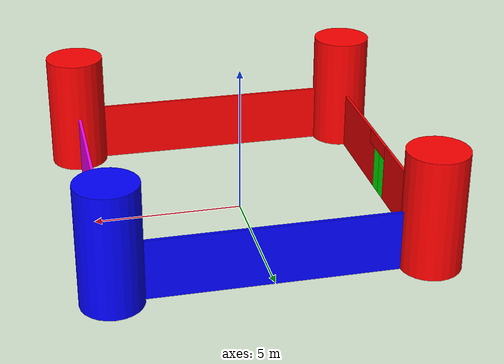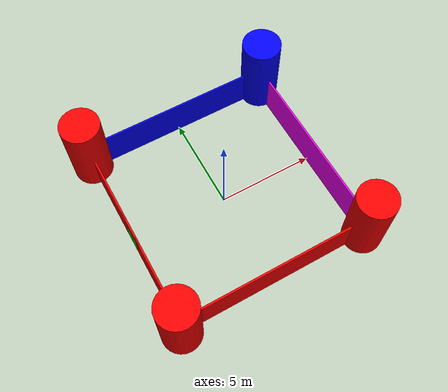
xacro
<?xml version="1.0"?>
<robot xmlns:xacro="http://www.ros.org/wiki/xacro"  name="castle">
    <xacro:property name="wall_length" value="10" />
    <xacro:property name="wall_thickness" value="0.1" />
    <xacro:property name="wall_height" value="2" />

    <xacro:property name="tower_height" value="4" />
    <xacro:property name="tower_radius" value="1" />

    <xacro:property name="door_width" value="1" />
    <xacro:property name="door_height" value="1.5" />
    <xacro:property name="door_thickness" value="0.1" />

    <xacro:include filename="colours.xacro" />
    <xacro:include filename="inertial.xacro" />
    <xacro:include filename="gazebo.xacro" />
    <xacro:include filename="castle_core.xacro" />
</robot>

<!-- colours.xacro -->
<robot xmlns:xacro="http://www.ros.org/wiki/xacro">
    <material name="black">
        <color rgba="0 0 0 1"/>
    </material>

    <material name="white">
        <color rgba="1 1 1 1"/>
    </material>

    <material name="red">
        <color rgba="1 0 0 1"/>
    </material>

    <material name="green">
        <color rgba="0 1 0 1"/>
    </material>

    <material name="blue">
        <color rgba="0 0 1 1"/>
    </material>

    <material name="yellow">
        <color rgba="1 1 0 1"/>
    </material>

    <material name="magenta">
        <color rgba="1 0 1 1"/>
    </material>

    <material name="cyan">
        <color rgba="0 1 1 1"/>
    </material>
</robot>

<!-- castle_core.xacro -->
<robot xmlns:xacro="http://www.ros.org/wiki/xacro">

    <link name="base_link">
    </link>

    <joint name="north_wall_joint" type="fixed">
        <parent link="base_link"/>
        <child link="north_wall"/>
        <origin xyz="0 ${wall_length/2} ${wall_height/2}"/>
    </joint>
    <link name="north_wall">
        <visual>
            <origin xyz="0 0 0" rpy="0 0 0"/>
            <geometry>
                <box size="${wall_length} ${wall_thickness} ${wall_height}"/>
            </geometry>
            <material name="blue"/>
        </visual>
        <collision>
            <origin xyz="0 0 0" rpy="0 0 0"/>
            <geometry>
                <box size="${wall_length} ${wall_thickness} ${wall_height}"/>
            </geometry>
        </collision>
        <xacro:inertial_box mass="0.5" x="${wall_length}" y="${wall_thickness}" z="${wall_height}">
            <origin xyz="0 0 0" rpy="0 0 0"/>
        </xacro:inertial_box>
    </link>

    <joint name="south_wall_joint" type="fixed">
        <parent link="base_link"/>
        <child link="south_wall"/>
        <origin xyz="0 -${wall_length/2} ${wall_height/2}"/>
    </joint>
    <link name="south_wall">
        <visual>
            <origin xyz="0 0 0" rpy="0 0 0"/>
            <geometry>
                <box size="${wall_length} ${wall_thickness} ${wall_height}"/>
            </geometry>
            <material name="red"/>
        </visual>
        <collision>
            <origin xyz="0 0 0" rpy="0 0 0"/>
            <geometry>
                <box size="${wall_length} ${wall_thickness} ${wall_height}"/>
            </geometry>
        </collision>
        <xacro:inertial_box mass="0.5" x="${wall_length}" y="${wall_thickness}" z="${wall_height}">
            <origin xyz="0 0 0" rpy="0 0 0"/>
        </xacro:inertial_box>
    </link>

    <joint name="east_wall_joint" type="fixed">
        <parent link="base_link"/>
        <child link="east_wall"/>
        <origin xyz="${wall_length/2} 0 ${wall_height/2}"/>
    </joint>
    <link name="east_wall">
        <visual>
            <origin xyz="0 0 0" rpy="0 0 ${pi/2}"/>
            <geometry>
                <box size="${wall_length} ${wall_thickness} ${wall_height}"/>
            </geometry>
            <material name="magenta"/>
        </visual>
        <collision>
            <origin xyz="0 0 0" rpy="0 0 ${pi/2}"/>
            <geometry>
                <box size="${wall_length} ${wall_thickness} ${wall_height}"/>
            </geometry>
        </collision>
        <xacro:inertial_box mass="0.5" x="${wall_length}" y="${wall_thickness}" z="${wall_height}">
            <origin xyz="0 0 0" rpy="0 0 ${pi/2}"/>
        </xacro:inertial_box>
    </link>

    <joint name="west_wall_joint_n" type="fixed">
        <parent link="base_link"/>
        <child link="west_wall_n"/>
        <origin xyz="-${wall_length/2} ${wall_length/4} ${wall_height/2}" rpy="0 0 ${pi/2}"/>
    </joint>
    <link name="west_wall_n">
        <visual>
            <origin xyz="0 0 0"/>
            <geometry>
                <box size="${wall_length/2-door_width} ${wall_thickness} ${wall_height}"/>
            </geometry>
            <material name="red"/>
        </visual>
        <collision>
            <origin xyz="0 0 0"/>
            <geometry>
                <box size="${wall_length/2-door_width} ${wall_thickness} ${wall_height}"/>
            </geometry>
         </collision>
        <xacro:inertial_box mass="0.5" x="${wall_length/2}" y="${wall_thickness}" z="${wall_height}">
            <origin xyz="0 0 0"/>
        </xacro:inertial_box>
    </link>

    <joint name="west_wall_joint_s" type="fixed">
        <parent link="base_link"/>
        <child link="west_wall_s"/>
        <origin xyz="-${wall_length/2} -${wall_length/4} ${wall_height/2}" rpy="0 0 ${pi/2}"/>
    </joint>
    <link name="west_wall_s">
        <visual>
            <origin xyz="0 0 0"/>
            <geometry>
                <box size="${wall_length/2-door_width} ${wall_thickness} ${wall_height}"/>
            </geometry>
            <material name="red"/>
        </visual>
        <collision>
            <origin xyz="0 0 0"/>
            <geometry>
                <box size="${wall_length/2-door_width} ${wall_thickness} ${wall_height}"/>
            </geometry>
        </collision>
        <xacro:inertial_box mass="0.5" x="${wall_length/2}" y="${wall_thickness}" z="${wall_height}">
            <origin xyz="0 0 0"/>
        </xacro:inertial_box>
    </link>

    <joint name="west_wall_joint_u" type="fixed">
        <parent link="base_link"/>
        <child link="west_wall_u"/>
        <origin xyz="-${wall_length/2} 0 ${door_height + (wall_height-door_height)/2}" rpy="0 0 ${pi/2}"/>
    </joint>
    <link name="west_wall_u">
        <visual>
            <origin xyz="0 0 0"/>
            <geometry>
                <box size="${door_width*2} ${wall_thickness} ${wall_height-door_height}"/>
            </geometry>
            <material name="red"/>
        </visual>
        <collision>
            <origin xyz="0 0 0"/>
            <geometry>
                <box size="${door_width*2} ${wall_thickness} ${wall_height-door_height}"/>
            </geometry>
        </collision>
        <xacro:inertial_box mass="0.5" x="${door_width*2}" y="${wall_thickness}" z="${wall_height-door_height}">
            <origin xyz="0 0 0"/>
        </xacro:inertial_box>
    </link>

    <joint name="ne_tower_joint" type="fixed">
        <parent link="base_link"/>
        <child link="ne_tower"/>
        <origin xyz="${wall_length/2} ${wall_length/2} ${tower_height/2}"/>
    </joint>
    <link name="ne_tower">
        <visual>
            <origin xyz="0 0 0" rpy="0 0 ${pi/2}"/>
            <geometry>
                <cylinder length="${tower_height}" radius="${tower_radius}" />
            </geometry>
            <material name="blue"/>
        </visual>
        <collision>
            <origin xyz="0 0 0" rpy="0 0 ${pi/2}"/>
            <geometry>
                <cylinder length="${tower_height}" radius="${tower_radius}" />
            </geometry>
        </collision>
        <xacro:inertial_cylinder mass="0.1" length="${tower_height}" radius="${tower_radius}">
            <origin xyz="0 0 0" rpy="0 0 0"/>
        </xacro:inertial_cylinder>
    </link>

    <joint name="se_tower_joint" type="fixed">
        <parent link="base_link"/>
        <child link="se_tower"/>
        <origin xyz="${wall_length/2} -${wall_length/2} ${tower_height/2}"/>
    </joint>
    <link name="se_tower">
        <visual>
            <origin xyz="0 0 0" rpy="0 0 ${pi/2}"/>
            <geometry>
                <cylinder length="${tower_height}" radius="${tower_radius}" />
            </geometry>
            <material name="red"/>
        </visual>
        <collision>
            <origin xyz="0 0 0" rpy="0 0 ${pi/2}"/>
            <geometry>
                <cylinder length="${tower_height}" radius="${tower_radius}" />
            </geometry>
        </collision>
        <xacro:inertial_cylinder mass="0.1" length="${tower_height}" radius="${tower_radius}">
            <origin xyz="0 0 0" rpy="0 0 0"/>
        </xacro:inertial_cylinder>
    </link>

    <joint name="sw_tower_joint" type="fixed">
        <parent link="base_link"/>
        <child link="sw_tower"/>
        <origin xyz="-${wall_length/2} -${wall_length/2} ${tower_height/2}"/>
    </joint>
    <link name="sw_tower">
        <visual>
            <origin xyz="0 0 0" rpy="0 0 ${pi/2}"/>
            <geometry>
                <cylinder length="${tower_height}" radius="${tower_radius}" />
            </geometry>
            <material name="red"/>
        </visual>
        <collision>
            <origin xyz="0 0 0" rpy="0 0 ${pi/2}"/>
            <geometry>
                <cylinder length="${tower_height}" radius="${tower_radius}" />
            </geometry>
        </collision>
        <xacro:inertial_cylinder mass="0.1" length="${tower_height}" radius="${tower_radius}">
            <origin xyz="0 0 0" rpy="0 0 0"/>
        </xacro:inertial_cylinder>
    </link>

    <joint name="nw_tower_joint" type="fixed">
        <parent link="base_link"/>
        <child link="nw_tower"/>
        <origin xyz="-${wall_length/2} ${wall_length/2} ${tower_height/2}"/>
    </joint>
    <link name="nw_tower">
        <visual>
            <origin xyz="0 0 0" rpy="0 0 ${pi/2}"/>
            <geometry>
                <cylinder length="${tower_height}" radius="${tower_radius}" />
            </geometry>
            <material name="red"/>
        </visual>
        <collision>
            <origin xyz="0 0 0" rpy="0 0 ${pi/2}"/>
            <geometry>
                <cylinder length="${tower_height}" radius="${tower_radius}" />
            </geometry>
        </collision>
        <xacro:inertial_cylinder mass="0.1" length="${tower_height}" radius="${tower_radius}">
            <origin xyz="0 0 0" rpy="0 0 0"/>
        </xacro:inertial_cylinder>
    </link>

    <joint name="rdoor" type="revolute">
        <parent link="base_link"/>
        <child link="rdoor_link"/>
        <origin xyz="-${wall_length/2} -${door_width/2} ${door_height/2}" rpy="0 0 ${pi/2}"/>
        <axis xyz="0 0 -1"/>
        <limit lower="0" upper="${pi/2}" velocity="100" effort="100"/>
    </joint>
    <link name="rdoor_link">
        <visual>
            <origin xyz="${door_width/4} 0 0"/>
            <geometry>
                <box size="${door_width/2} ${wall_thickness} ${door_height}"/>
            </geometry>
            <material name="green"/>
        </visual>
        <collision>
            <origin xyz="0 0 0"/>
            <geometry>
                <box size="${door_width/2} ${wall_thickness} ${door_height}"/>
            </geometry>
        </collision>
        <xacro:inertial_box mass="0.5" x="${door_width/2}" y="${wall_thickness}" z="${door_height}">
            <origin xyz="0 0 0"/>
        </xacro:inertial_box>
    </link>
    <joint name="ldoor" type="revolute">
        <parent link="base_link"/>
        <child link="ldoor_link"/>
        <origin xyz="-${wall_length/2} ${door_width/2} ${door_height/2}" rpy="0 0 ${pi/2}"/>
        <axis xyz="0 0 -1"/>
        <limit lower="0" upper="${pi/2}" velocity="100" effort="100"/>
        <mimic joint="rdoor" multiplier="-1" offset="0.0"/>
    </joint>
    <link name="ldoor_link">
        <visual>
            <origin xyz="${-door_width/4} 0 0"/>
            <geometry>
                <box size="${door_width/2} ${wall_thickness} ${door_height}"/>
            </geometry>
            <material name="green"/>
        </visual>
        <collision>
            <origin xyz="0 0 0"/>
            <geometry>
                <box size="${door_width/2} ${wall_thickness} ${door_height}"/>
            </geometry>
        </collision>
        <xacro:inertial_box mass="0.5" x="${door_width/2}" y="${wall_thickness}" z="${door_height}">
            <origin xyz="0 0 0"/>
        </xacro:inertial_box>
    </link>
</robot>
